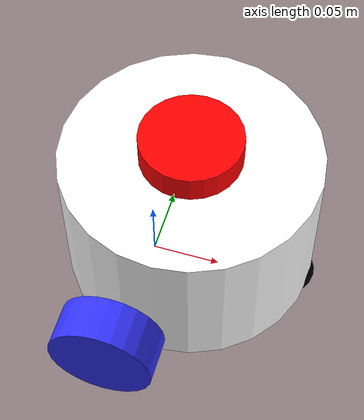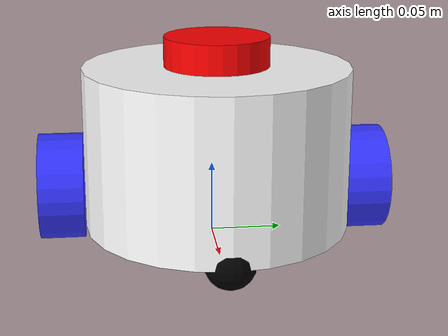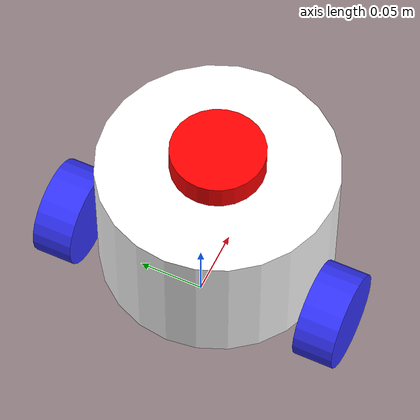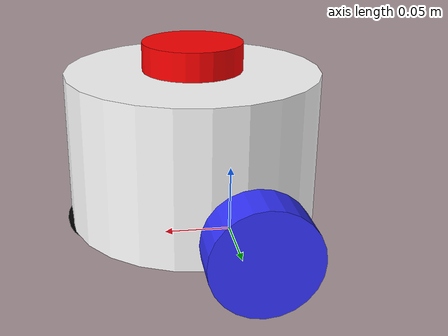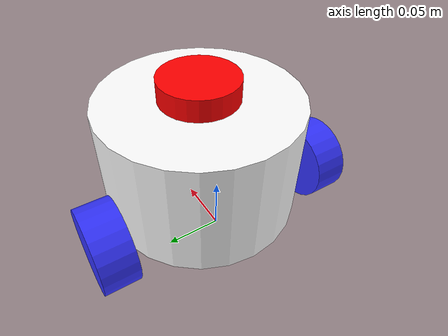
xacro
<?xml version="1.0"?>
<robot xmlns:xacro="http://www.ros.org/wiki/xacro"  name="robot">

    <xacro:arg name="use_ros2_control" default="true"/>
    <xacro:arg name="sim_mode" default="false"/>

    <xacro:include filename="inertial_macros.xacro" />

    <xacro:include filename="robot_core.xacro" />

    <xacro:if value="$(arg use_ros2_control)">
        <xacro:include filename="ros2_control.xacro" />
    </xacro:if>
    <xacro:unless value="$(arg use_ros2_control)">
        <xacro:include filename="gazebo_control.xacro" />
    </xacro:unless>

    <xacro:include filename="lidar.xacro" />

    <xacro:include filename="camera.xacro" />

</robot>

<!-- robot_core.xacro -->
<robot xmlns:xacro="http://www.ros.org/wiki/xacro" >

    <material name="white">
        <color rgba="1 1 1 1"/>
    </material>

    <material name="orange">
        <color rgba="1 0.3 0.1 1"/>
    </material>

    <material name="blue">
        <color rgba="0.2 0.2 1 1"/>
    </material>

    <material name="black">
        <color rgba="0 0 0 1"/>
    </material>

    <!-- BASE LINK -->

    <link name="base_link">

    </link>

    <!-- BASE_FOOTPRINT LINK -->

    <joint name="base_footprint_joint" type="fixed">
        <parent link="base_link"/>
        <child link="base_footprint"/>
        <origin xyz="0 0 0" rpy="0 0 0"/>
    </joint>

    <link name="base_footprint">
    </link>

    <!-- CHASSIS LINK -->

    <joint name="chassis_joint" type="fixed">
        <parent link="base_link"/>
        <child link="chassis"/>
        <origin xyz="0.029 0 0.037"/>
    </joint>

    <link name="chassis">
        <visual>
            <origin xyz="0 0 0.035" rpy="0 0 0"/>
            <geometry>
                <cylinder length="0.11" radius="0.09" />
            </geometry>
            <material name="white"/>
        </visual>
        <collision>
            <origin xyz="0 0 0.035" rpy="0 0 0"/>
            <geometry>
                <cylinder length="0.11" radius="0.09" />
            </geometry>
        </collision>
        <xacro:inertial_cylinder mass="1.23" length="0.11" radius="0.09">
            <origin xyz="0 0 0.035" rpy="0 0 0"/>
        </xacro:inertial_cylinder>
    </link>
    <gazebo reference="chassis">
        <material>Gazebo/White</material>
    </gazebo>

    <!-- LEFT WHEEL -->

    <joint name="left_wheel_joint" type="continuous">
        <parent link="base_link"/>
        <child link="left_wheel"/>
        <origin xyz="0 0.09 0.037" rpy="-${pi/2} 0 0"/>
        <axis xyz="0 0 -1"/>
    </joint>

    <link name="left_wheel">
        <visual>
            <origin xyz="0 0 0.0165" rpy="0 0 0"/>
            <geometry>
                <cylinder length="0.031" radius="0.037" />
            </geometry>
            <material name="blue"/>
        </visual>
        <collision>
            <origin xyz="0 0 0.0165" rpy="0 0 0"/>
            <geometry>
                <cylinder length="0.031" radius="0.037" />
            </geometry>
            <material name="blue"/>
        </collision>
        <xacro:inertial_cylinder mass="0.035" length="0.031" radius="0.037">
            <origin xyz="0 0 0.0165" rpy="0 0 0"/>
        </xacro:inertial_cylinder>

    </link>
    <gazebo reference="left_wheel">
        <material>Gazebo/Blue</material>
    </gazebo>

    <!-- RIGHT WHEEL -->

    <joint name="right_wheel_joint" type="continuous">
        <parent link="base_link"/>
        <child link="right_wheel"/>
        <origin xyz="0 -0.09 0.037" rpy="${pi/2} 0 0"/>
        <axis xyz="0 0 -1"/>
    </joint>

    <link name="right_wheel">
        <visual>
            <origin xyz="0 0 0.0165" rpy="0 0 0"/>
            <geometry>
                <cylinder length="0.031" radius="0.037" />
            </geometry>
            <material name="blue"/>
        </visual>
        <collision>
            <origin xyz="0 0 0.0165" rpy="0 0 0"/>
            <geometry>
                <cylinder length="0.031" radius="0.037" />
            </geometry>
            <material name="blue"/>
        </collision>
        <xacro:inertial_cylinder mass="0.035" length="0.031" radius="0.037">
            <origin xyz="0 0 0.0165" rpy="0 0 0"/>
        </xacro:inertial_cylinder>
    </link>
    <gazebo reference="right_wheel">
        <material>Gazebo/Blue</material>
    </gazebo>

    <!-- FRONT CASTER WHEEL -->

    <joint name="front_caster_wheel_joint" type="fixed">
        <parent link="base_link"/>
        <child link="front_caster_wheel"/>
        <origin xyz="0.105 0 0.017" rpy="0 0 0"/>
    </joint>

    <link name="front_caster_wheel">
        <visual>
            <geometry>
                <sphere radius="0.017" />
            </geometry>
            <material name="black"/>
        </visual>
        <collision>
            <geometry>
                <sphere radius="0.017" />
            </geometry>
            <material name="black"/>
        </collision>
        <xacro:inertial_sphere mass="0.042" radius="0.017">
            <origin xyz="0 0 0" rpy="0 0 0"/>
        </xacro:inertial_sphere>
    </link>
    <gazebo reference="front_caster_wheel">
        <material>Gazebo/Black</material>
        <mu1 value="0.003"/>
        <mu2 value="0.003"/>
    </gazebo>

    <!-- BACK CASTER WHEEL -->

</robot>

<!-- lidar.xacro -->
<robot xmlns:xacro="http://www.ros.org/wiki/xacro" >

    <joint name="laser_joint" type="fixed">
        <parent link="chassis"/>
        <child link="laser_frame"/>
        <origin xyz="0 0 0.075" rpy="0 0 0"/>
    </joint>

    <link name="laser_frame">
        <visual>
            <origin xyz="0 0 0.0175" rpy="0 0 0"/>
            <geometry>
                <cylinder length="0.035" radius="0.0355"/>
            </geometry>
            <material name="red"/>
        </visual>
        <collision>
            <origin xyz="0 0 0.0175" rpy="0 0 0"/>
            <geometry>
                <cylinder length="0.035" radius="0.0355"/>
            </geometry>
        </collision>
        <xacro:inertial_cylinder mass="0.001" length="0.035" radius="0.0355">
            <origin xyz="0 0 0.0175" rpy="0 0 0"/>
        </xacro:inertial_cylinder>
    </link>

    <material name="red">
        <color rgba="1 0 0 1"/>
    </material>

    <gazebo reference="laser_frame">
        <material>Gazebo/Red</material>

        <sensor name="laser" type="ray">
        <pose> 0 0 0 0 0 0 </pose>
        <visualize>false</visualize>
        <update_rate>10</update_rate>
        <ray>
            <scan>
                <horizontal>
                    <samples>360</samples>
                    <min_angle>-3.14</min_angle>
                    <max_angle>3.14</max_angle>
                </horizontal>
            </scan>
            <range>
                <min>0.3</min>
                <max>12</max>
            </range>
        </ray>
        <plugin name="laser_controller" filename="libgazebo_ros_ray_sensor.so">
            <ros>
                <argument>~/out:=scan</argument>
            </ros>
            <output_type>sensor_msgs/LaserScan</output_type>
            <frame_name>laser_frame</frame_name>
        </plugin>
    </sensor>
    </gazebo>

</robot>

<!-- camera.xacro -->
<robot xmlns:xacro="http://www.ros.org/wiki/xacro" >

    <joint name="camera_joint" type="fixed">
        <parent link="chassis"/>
        <child link="camera_link"/>
        <origin xyz="0.075 0 0.055" rpy="0 0 0"/>
    </joint>

    <link name="camera_link">
        <visual>
            <geometry>
                <sphere radius="0.005" />
            </geometry>
            <material name="red"/>
        </visual>
    </link>

    <joint name="camera_optical_joint" type="fixed">
        <parent link="camera_link"/>
        <child link="camera_link_optical"/>
        <origin xyz="0 0 0" rpy="${-pi/2} 0 ${-pi/2}"/>
    </joint>

    <link name="camera_link_optical">
    </link>

    <gazebo reference="camera_link">
        <material>Gazebo/Red</material>

        <sensor name="camera" type="camera">
            <pose> 0 0 0 0 0 0 </pose>
            <visualize>true</visualize>
            <update_rate>10</update_rate>
            <camera>
                <horizontal_fov>1.089</horizontal_fov>
                <image>
                    <format>R8G8B8</format>
                    <width>640</width>
                    <height>480</height>
                </image>
                <clip>
                    <near>0.05</near>
                    <far>8.0</far>
                </clip>
            </camera>
            <plugin name="camera_controller" filename="libgazebo_ros_camera.so">
                <frame_name>camera_link_optical</frame_name>
            </plugin>
        </sensor>
    </gazebo>

</robot>
